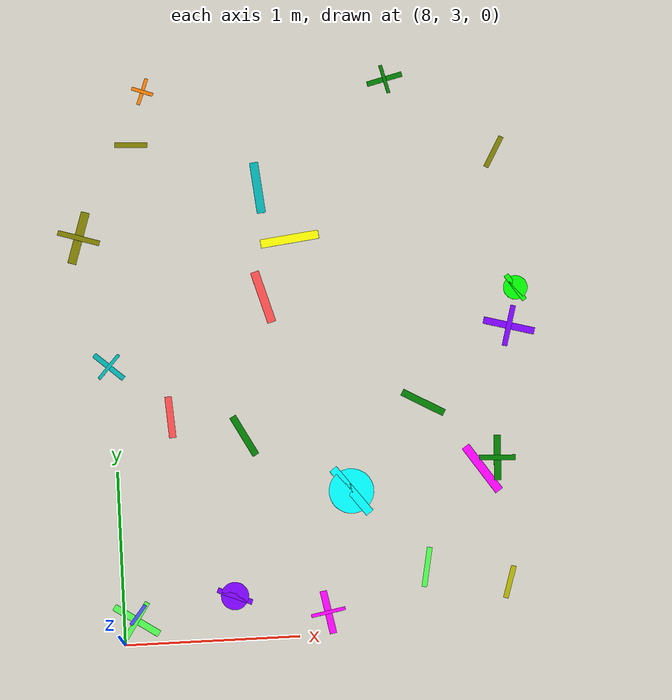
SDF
<sdf version="1.6">
 <world name="default">
  <model name="letter_Y_1735">
   <static>true</static>
   <pose>8.08 3.17 0.012 0 0 4.040</pose>
   <link name="link">
    <visual name="visual">
     <geometry><box><size>0.14 0.02 0.002</size></box></geometry>
     <material>
      <ambient>0.3 0.3 1.0 1</ambient>
      <diffuse>0.3 0.3 1.0 1</diffuse>
      <specular>0.1 0.1 0.1 1</specular>
     </material>
    </visual>
   </link>
  </model>
  <model name="letter_T_1736">
   <static>true</static>
   <pose>8.07 3.14 0.005 0 0 2.555</pose>
   <link name="link">
    <visual name="visual">
     <geometry><box><size>0.30 0.04 0.002</size></box></geometry>
     <material>
      <ambient>0.3 1.0 0.3 1</ambient>
      <diffuse>0.3 1.0 0.3 1</diffuse>
      <specular>0.1 0.1 0.1 1</specular>
     </material>
    </visual>
    <visual name="visual2">
     <pose>0 0 0.001 0 0 1.57</pose>
     <geometry><box><size>0.24 0.03 0.001</size></box></geometry>
     <material><ambient>0.3 1.0 0.3 1</ambient><diffuse>0.3 1.0 0.3 1</diffuse></material>
    </visual>
   </link>
  </model>
  <model name="letter_X_1738">
   <static>true</static>
   <pose>8.32 4.30 0.010 0 0 4.779</pose>
   <link name="link">
    <visual name="visual">
     <geometry><box><size>0.24 0.04 0.002</size></box></geometry>
     <material>
      <ambient>1.0 0.3 0.3 1</ambient>
      <diffuse>1.0 0.3 0.3 1</diffuse>
      <specular>0.1 0.1 0.1 1</specular>
     </material>
    </visual>
   </link>
  </model>
  <model name="letter_H_1739">
   <static>true</static>
   <pose>7.98 4.61 0.012 0 0 5.559</pose>
   <link name="link">
    <visual name="visual">
     <geometry><box><size>0.22 0.03 0.002</size></box></geometry>
     <material>
      <ambient>0.0 0.7 0.7 1</ambient>
      <diffuse>0.0 0.7 0.7 1</diffuse>
      <specular>0.1 0.1 0.1 1</specular>
     </material>
    </visual>
    <visual name="visual2">
     <pose>0 0 0.001 0 0 1.57</pose>
     <geometry><box><size>0.18 0.02 0.001</size></box></geometry>
     <material><ambient>0.0 0.7 0.7 1</ambient><diffuse>0.0 0.7 0.7 1</diffuse></material>
    </visual>
   </link>
  </model>
  <model name="letter_A_1740">
   <static>true</static>
   <pose>7.84 5.37 0.009 0 0 4.408</pose>
   <link name="link">
    <visual name="visual">
     <geometry><box><size>0.31 0.05 0.002</size></box></geometry>
     <material>
      <ambient>0.5 0.5 0.0 1</ambient>
      <diffuse>0.5 0.5 0.0 1</diffuse>
      <specular>0.1 0.1 0.1 1</specular>
     </material>
    </visual>
    <visual name="visual2">
     <pose>0 0 0.001 0 0 1.57</pose>
     <geometry><box><size>0.25 0.03 0.001</size></box></geometry>
     <material><ambient>0.5 0.5 0.0 1</ambient><diffuse>0.5 0.5 0.0 1</diffuse></material>
    </visual>
   </link>
  </model>
  <model name="letter_T_1743">
   <static>true</static>
   <pose>8.25 6.21 0.006 0 0 1.222</pose>
   <link name="link">
    <visual name="visual">
     <geometry><box><size>0.16 0.02 0.002</size></box></geometry>
     <material>
      <ambient>1.0 0.5 0.0 1</ambient>
      <diffuse>1.0 0.5 0.0 1</diffuse>
      <specular>0.1 0.1 0.1 1</specular>
     </material>
    </visual>
    <visual name="visual2">
     <pose>0 0 0.001 0 0 1.57</pose>
     <geometry><box><size>0.13 0.02 0.001</size></box></geometry>
     <material><ambient>1.0 0.5 0.0 1</ambient><diffuse>1.0 0.5 0.0 1</diffuse></material>
    </visual>
   </link>
  </model>
  <model name="letter_N_1744">
   <static>true</static>
   <pose>8.17 5.90 0.007 0 0 3.088</pose>
   <link name="link">
    <visual name="visual">
     <geometry><box><size>0.19 0.03 0.002</size></box></geometry>
     <material>
      <ambient>0.5 0.5 0.0 1</ambient>
      <diffuse>0.5 0.5 0.0 1</diffuse>
      <specular>0.1 0.1 0.1 1</specular>
     </material>
    </visual>
   </link>
  </model>
  <model name="letter_L_1815">
   <static>true</static>
   <pose>9.17 3.13 0.003 0 0 1.756</pose>
   <link name="link">
    <visual name="visual">
     <geometry><box><size>0.25 0.04 0.002</size></box></geometry>
     <material>
      <ambient>1.0 0.0 1.0 1</ambient>
      <diffuse>1.0 0.0 1.0 1</diffuse>
      <specular>0.1 0.1 0.1 1</specular>
     </material>
    </visual>
    <visual name="visual2">
     <pose>0 0 0.001 0 0 1.57</pose>
     <geometry><box><size>0.20 0.02 0.001</size></box></geometry>
     <material><ambient>1.0 0.0 1.0 1</ambient><diffuse>1.0 0.0 1.0 1</diffuse></material>
    </visual>
   </link>
  </model>
  <model name="letter_O_1817">
   <static>true</static>
   <pose>8.64 3.25 0.008 0 0 5.898</pose>
   <link name="link">
    <visual name="visual">
     <geometry><box><size>0.21 0.03 0.002</size></box></geometry>
     <material>
      <ambient>0.5 0.0 1.0 1</ambient>
      <diffuse>0.5 0.0 1.0 1</diffuse>
      <specular>0.1 0.1 0.1 1</specular>
     </material>
    </visual>
    <visual name="visual2">
     <geometry><cylinder><radius>0.08</radius><length>0.002</length></cylinder></geometry>
     <material><ambient>0.5 0.0 1.0 1</ambient><diffuse>0.5 0.0 1.0 1</diffuse></material>
    </visual>
   </link>
  </model>
  <model name="letter_J_1818">
   <static>true</static>
   <pose>8.74 4.17 0.009 0 0 5.209</pose>
   <link name="link">
    <visual name="visual">
     <geometry><box><size>0.26 0.04 0.002</size></box></geometry>
     <material>
      <ambient>0.0 0.5 0.0 1</ambient>
      <diffuse>0.0 0.5 0.0 1</diffuse>
      <specular>0.1 0.1 0.1 1</specular>
     </material>
    </visual>
   </link>
  </model>
  <model name="letter_O_1819">
   <static>true</static>
   <pose>9.34 3.82 0.007 0 0 2.217</pose>
   <link name="link">
    <visual name="visual">
     <geometry><box><size>0.33 0.05 0.002</size></box></geometry>
     <material>
      <ambient>0.0 1.0 1.0 1</ambient>
      <diffuse>0.0 1.0 1.0 1</diffuse>
      <specular>0.1 0.1 0.1 1</specular>
     </material>
    </visual>
    <visual name="visual2">
     <geometry><cylinder><radius>0.13</radius><length>0.002</length></cylinder></geometry>
     <material><ambient>0.0 1.0 1.0 1</ambient><diffuse>0.0 1.0 1.0 1</diffuse></material>
    </visual>
   </link>
  </model>
  <model name="letter_M_1820">
   <static>true</static>
   <pose>9.06 5.30 0.012 0 0 0.120</pose>
   <link name="link">
    <visual name="visual">
     <geometry><box><size>0.34 0.05 0.002</size></box></geometry>
     <material>
      <ambient>1.0 1.0 0.0 1</ambient>
      <diffuse>1.0 1.0 0.0 1</diffuse>
      <specular>0.1 0.1 0.1 1</specular>
     </material>
    </visual>
   </link>
  </model>
  <model name="letter_B_1821">
   <static>true</static>
   <pose>8.89 4.97 0.009 0 0 1.851</pose>
   <link name="link">
    <visual name="visual">
     <geometry><box><size>0.31 0.05 0.002</size></box></geometry>
     <material>
      <ambient>1.0 0.3 0.3 1</ambient>
      <diffuse>1.0 0.3 0.3 1</diffuse>
      <specular>0.1 0.1 0.1 1</specular>
     </material>
    </visual>
   </link>
  </model>
  <model name="letter_X_1822">
   <static>true</static>
   <pose>8.89 5.61 0.010 0 0 1.672</pose>
   <link name="link">
    <visual name="visual">
     <geometry><box><size>0.30 0.05 0.002</size></box></geometry>
     <material>
      <ambient>0.0 0.7 0.7 1</ambient>
      <diffuse>0.0 0.7 0.7 1</diffuse>
      <specular>0.1 0.1 0.1 1</specular>
     </material>
    </visual>
   </link>
  </model>
  <model name="letter_K_1897">
   <static>true</static>
   <pose>9.75 3.36 0.006 0 0 1.381</pose>
   <link name="link">
    <visual name="visual">
     <geometry><box><size>0.23 0.03 0.002</size></box></geometry>
     <material>
      <ambient>0.3 1.0 0.3 1</ambient>
      <diffuse>0.3 1.0 0.3 1</diffuse>
      <specular>0.1 0.1 0.1 1</specular>
     </material>
    </visual>
   </link>
  </model>
  <model name="letter_B_1898">
   <static>true</static>
   <pose>10.22 3.25 0.011 0 0 4.409</pose>
   <link name="link">
    <visual name="visual">
     <geometry><box><size>0.19 0.03 0.002</size></box></geometry>
     <material>
      <ambient>0.7 0.7 0.0 1</ambient>
      <diffuse>0.7 0.7 0.0 1</diffuse>
      <specular>0.1 0.1 0.1 1</specular>
     </material>
    </visual>
   </link>
  </model>
  <model name="letter_J_1899">
   <static>true</static>
   <pose>9.78 4.31 0.009 0 0 5.766</pose>
   <link name="link">
    <visual name="visual">
     <geometry><box><size>0.27 0.04 0.002</size></box></geometry>
     <material>
      <ambient>0.0 0.5 0.0 1</ambient>
      <diffuse>0.0 0.5 0.0 1</diffuse>
      <specular>0.1 0.1 0.1 1</specular>
     </material>
    </visual>
   </link>
  </model>
  <model name="letter_H_1900">
   <static>true</static>
   <pose>10.19 3.97 0.008 0 0 4.668</pose>
   <link name="link">
    <visual name="visual">
     <geometry><box><size>0.26 0.04 0.002</size></box></geometry>
     <material>
      <ambient>0.0 0.5 0.0 1</ambient>
      <diffuse>0.0 0.5 0.0 1</diffuse>
      <specular>0.1 0.1 0.1 1</specular>
     </material>
    </visual>
    <visual name="visual2">
     <pose>0 0 0.001 0 0 1.57</pose>
     <geometry><box><size>0.21 0.03 0.001</size></box></geometry>
     <material><ambient>0.0 0.5 0.0 1</ambient><diffuse>0.0 0.5 0.0 1</diffuse></material>
    </visual>
   </link>
  </model>
  <model name="letter_K_1901">
   <static>true</static>
   <pose>10.10 3.91 0.005 0 0 2.165</pose>
   <link name="link">
    <visual name="visual">
     <geometry><box><size>0.32 0.05 0.002</size></box></geometry>
     <material>
      <ambient>1.0 0.0 1.0 1</ambient>
      <diffuse>1.0 0.0 1.0 1</diffuse>
      <specular>0.1 0.1 0.1 1</specular>
     </material>
    </visual>
   </link>
  </model>
  <model name="letter_H_1902">
   <static>true</static>
   <pose>10.30 4.73 0.010 0 0 6.015</pose>
   <link name="link">
    <visual name="visual">
     <geometry><box><size>0.30 0.04 0.002</size></box></geometry>
     <material>
      <ambient>0.5 0.0 1.0 1</ambient>
      <diffuse>0.5 0.0 1.0 1</diffuse>
      <specular>0.1 0.1 0.1 1</specular>
     </material>
    </visual>
    <visual name="visual2">
     <pose>0 0 0.001 0 0 1.57</pose>
     <geometry><box><size>0.24 0.03 0.001</size></box></geometry>
     <material><ambient>0.5 0.0 1.0 1</ambient><diffuse>0.5 0.0 1.0 1</diffuse></material>
    </visual>
   </link>
  </model>
  <model name="letter_O_1903">
   <static>true</static>
   <pose>10.35 4.95 0.011 0 0 2.157</pose>
   <link name="link">
    <visual name="visual">
     <geometry><box><size>0.18 0.03 0.002</size></box></geometry>
     <material>
      <ambient>0.0 1.0 0.0 1</ambient>
      <diffuse>0.0 1.0 0.0 1</diffuse>
      <specular>0.1 0.1 0.1 1</specular>
     </material>
    </visual>
    <visual name="visual2">
     <geometry><cylinder><radius>0.07</radius><length>0.002</length></cylinder></geometry>
     <material><ambient>0.0 1.0 0.0 1</ambient><diffuse>0.0 1.0 0.0 1</diffuse></material>
    </visual>
   </link>
  </model>
  <model name="letter_B_1904">
   <static>true</static>
   <pose>10.27 5.75 0.006 0 0 4.193</pose>
   <link name="link">
    <visual name="visual">
     <geometry><box><size>0.20 0.03 0.002</size></box></geometry>
     <material>
      <ambient>0.5 0.5 0.0 1</ambient>
      <diffuse>0.5 0.5 0.0 1</diffuse>
      <specular>0.1 0.1 0.1 1</specular>
     </material>
    </visual>
   </link>
  </model>
  <model name="letter_L_1905">
   <static>true</static>
   <pose>9.66 6.21 0.006 0 0 3.382</pose>
   <link name="link">
    <visual name="visual">
     <geometry><box><size>0.21 0.03 0.002</size></box></geometry>
     <material>
      <ambient>0.0 0.5 0.0 1</ambient>
      <diffuse>0.0 0.5 0.0 1</diffuse>
      <specular>0.1 0.1 0.1 1</specular>
     </material>
    </visual>
    <visual name="visual2">
     <pose>0 0 0.001 0 0 1.57</pose>
     <geometry><box><size>0.17 0.02 0.001</size></box></geometry>
     <material><ambient>0.0 0.5 0.0 1</ambient><diffuse>0.0 0.5 0.0 1</diffuse></material>
    </visual>
   </link>
  </model>
 </world>
</sdf>
